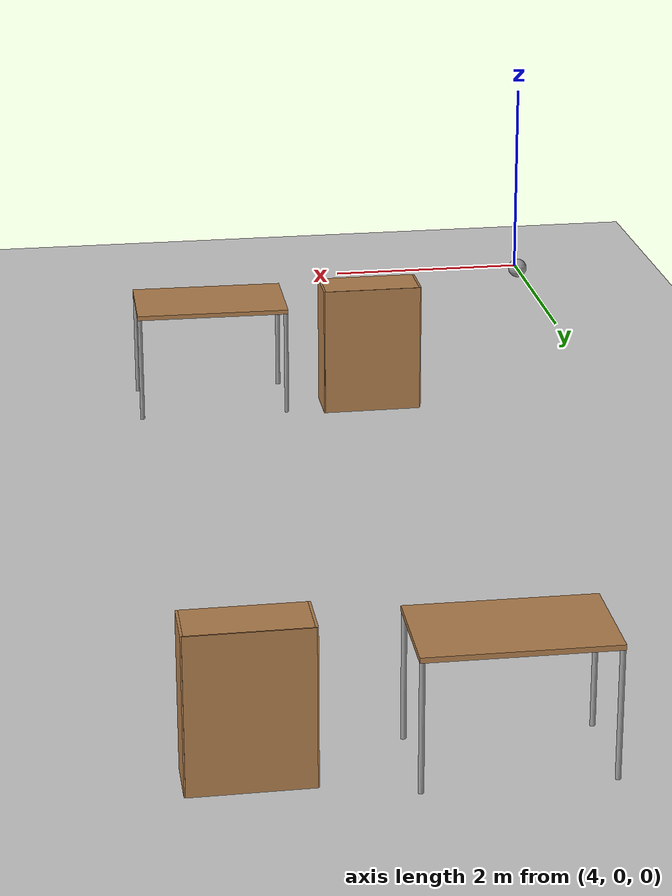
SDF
<sdf version="1.6">
 <world name="default">
  <model name="ground_plane">
   <static>1</static>
   <link name="link">
    <collision name="collision">
     <geometry><plane><normal>0 0 1</normal><size>100 100</size></plane></geometry>
     <surface><friction><ode><mu>100</mu><mu2>50</mu2></ode></friction></surface>
    </collision>
    <visual name="visual">
     <cast_shadows>0</cast_shadows>
     <geometry><plane><normal>0 0 1</normal><size>100 100</size></plane></geometry>
     <material>
      <script><uri>file://media/materials/scripts/gazebo.material</uri><name>Gazebo/Grey</name></script>
     </material>
    </visual>
   </link>
  </model>
  <model name="Untitled">
   <link name="link_0">
    <inertial>
     <mass>1</mass>
     <inertia><ixx>0.1</ixx><ixy>0</ixy><ixz>0</ixz><iyy>0.1</iyy><iyz>0</iyz><izz>0.1</izz></inertia>
    </inertial>
    <visual name="visual">
     <geometry><sphere><radius>0.1</radius></sphere></geometry>
     <material>
      <lighting>1</lighting>
      <script><uri>file://media/materials/scripts/gazebo.material</uri><name>Gazebo/Grey</name></script>
      <ambient>1 1 1 1</ambient>
      <diffuse>1 1 1 1</diffuse>
      <specular>1 1 1 1</specular>
      <emissive>1 1 1 1</emissive>
      <shader type="vertex"><normal_map>__default__</normal_map></shader>
     </material>
    </visual>
    <collision name="collision">
     <geometry><sphere><radius>0.1</radius></sphere></geometry>
     <surface>
      <friction>
       <ode><mu>1</mu><mu2>1</mu2><fdir1>0 0 0</fdir1><slip1>0</slip1><slip2>0</slip2></ode>
       <torsional>
        <coefficient>1</coefficient>
        <patch_radius>0</patch_radius>
        <surface_radius>0</surface_radius>
        <use_patch_radius>1</use_patch_radius>
        <ode><slip>0</slip></ode>
       </torsional>
      </friction>
      <bounce><restitution_coefficient>0</restitution_coefficient><threshold>1e+06</threshold></bounce>
      <contact>
       <collide_without_contact>0</collide_without_contact>
       <collide_without_contact_bitmask>1</collide_without_contact_bitmask>
       <collide_bitmask>1</collide_bitmask>
       <ode>
        <soft_cfm>0</soft_cfm>
        <soft_erp>0.2</soft_erp>
        <kp>1e+13</kp>
        <kd>1</kd>
        <max_vel>0.01</max_vel>
        <min_depth>0</min_depth>
       </ode>
       <bullet>
        <split_impulse>1</split_impulse>
        <split_impulse_penetration_threshold>-0.01</split_impulse_penetration_threshold>
        <soft_cfm>0</soft_cfm>
        <soft_erp>0.2</soft_erp>
        <kp>1e+13</kp>
        <kd>1</kd>
       </bullet>
      </contact>
     </surface>
    </collision>
   </link>
   <static>0</static>
   <pose>4.05876 0.388057 0.1 -0.002925 -7.8e-05 -2e-06</pose>
  </model>
  <model name="bookshelf">
   <static>1</static>
   <link name="link">
    <inertial><mass>1</mass></inertial>
    <collision name="back">
     <pose>0 0.005 0.6 0 -0 0</pose>
     <geometry><box><size>0.9 0.01 1.2</size></box></geometry>
    </collision>
    <visual name="visual1">
     <pose>0 0.005 0.6 0 -0 0</pose>
     <geometry><box><size>0.9 0.01 1.2</size></box></geometry>
     <material>
      <script><uri>file://media/materials/scripts/gazebo.material</uri><name>Gazebo/Wood</name></script>
     </material>
    </visual>
    <collision name="left_side">
     <pose>0.45 -0.195 0.6 0 -0 0</pose>
     <geometry><box><size>0.02 0.4 1.2</size></box></geometry>
    </collision>
    <visual name="visual2">
     <pose>0.45 -0.195 0.6 0 -0 0</pose>
     <geometry><box><size>0.02 0.4 1.2</size></box></geometry>
     <material>
      <script><uri>file://media/materials/scripts/gazebo.material</uri><name>Gazebo/Wood</name></script>
     </material>
    </visual>
    <collision name="right_side">
     <pose>-0.45 -0.195 0.6 0 -0 0</pose>
     <geometry><box><size>0.02 0.4 1.2</size></box></geometry>
    </collision>
    <visual name="visual3">
     <pose>-0.45 -0.195 0.6 0 -0 0</pose>
     <geometry><box><size>0.02 0.4 1.2</size></box></geometry>
     <material>
      <script><uri>file://media/materials/scripts/gazebo.material</uri><name>Gazebo/Wood</name></script>
     </material>
    </visual>
    <collision name="bottom">
     <pose>0 -0.195 0.03 0 -0 0</pose>
     <geometry><box><size>0.88 0.4 0.06</size></box></geometry>
    </collision>
    <visual name="visual4">
     <pose>0 -0.195 0.03 0 -0 0</pose>
     <geometry><box><size>0.88 0.4 0.06</size></box></geometry>
     <material>
      <script><uri>file://media/materials/scripts/gazebo.material</uri><name>Gazebo/Wood</name></script>
     </material>
    </visual>
    <collision name="top">
     <pose>0 -0.195 1.19 0 -0 0</pose>
     <geometry><box><size>0.88 0.4 0.02</size></box></geometry>
    </collision>
    <visual name="visual5">
     <pose>0 -0.195 1.19 0 -0 0</pose>
     <geometry><box><size>0.88 0.4 0.02</size></box></geometry>
     <material>
      <script><uri>file://media/materials/scripts/gazebo.material</uri><name>Gazebo/Wood</name></script>
     </material>
    </visual>
    <collision name="low_shelf">
     <pose>0 -0.195 0.43 0 -0 0</pose>
     <geometry><box><size>0.88 0.4 0.02</size></box></geometry>
    </collision>
    <visual name="visual6">
     <pose>0 -0.195 0.43 0 -0 0</pose>
     <geometry><box><size>0.88 0.4 0.02</size></box></geometry>
     <material>
      <script><uri>file://media/materials/scripts/gazebo.material</uri><name>Gazebo/Wood</name></script>
     </material>
    </visual>
    <collision name="high_shelf">
     <pose>0 -0.195 0.8 0 -0 0</pose>
     <geometry><box><size>0.88 0.4 0.02</size></box></geometry>
    </collision>
    <visual name="visual7">
     <pose>0 -0.195 0.8 0 -0 0</pose>
     <geometry><box><size>0.88 0.4 0.02</size></box></geometry>
     <material>
      <script><uri>file://media/materials/scripts/gazebo.material</uri><name>Gazebo/Wood</name></script>
     </material>
    </visual>
   </link>
   <pose>8.19399 11.037 0 0 -0 0</pose>
  </model>
  <model name="bookshelf_0">
   <static>1</static>
   <link name="link">
    <inertial><mass>1</mass></inertial>
    <collision name="back">
     <pose>0 0.005 0.6 0 -0 0</pose>
     <geometry><box><size>0.9 0.01 1.2</size></box></geometry>
    </collision>
    <visual name="visual1">
     <pose>0 0.005 0.6 0 -0 0</pose>
     <geometry><box><size>0.9 0.01 1.2</size></box></geometry>
     <material>
      <script><uri>file://media/materials/scripts/gazebo.material</uri><name>Gazebo/Wood</name></script>
     </material>
    </visual>
    <collision name="left_side">
     <pose>0.45 -0.195 0.6 0 -0 0</pose>
     <geometry><box><size>0.02 0.4 1.2</size></box></geometry>
    </collision>
    <visual name="visual2">
     <pose>0.45 -0.195 0.6 0 -0 0</pose>
     <geometry><box><size>0.02 0.4 1.2</size></box></geometry>
     <material>
      <script><uri>file://media/materials/scripts/gazebo.material</uri><name>Gazebo/Wood</name></script>
     </material>
    </visual>
    <collision name="right_side">
     <pose>-0.45 -0.195 0.6 0 -0 0</pose>
     <geometry><box><size>0.02 0.4 1.2</size></box></geometry>
    </collision>
    <visual name="visual3">
     <pose>-0.45 -0.195 0.6 0 -0 0</pose>
     <geometry><box><size>0.02 0.4 1.2</size></box></geometry>
     <material>
      <script><uri>file://media/materials/scripts/gazebo.material</uri><name>Gazebo/Wood</name></script>
     </material>
    </visual>
    <collision name="bottom">
     <pose>0 -0.195 0.03 0 -0 0</pose>
     <geometry><box><size>0.88 0.4 0.06</size></box></geometry>
    </collision>
    <visual name="visual4">
     <pose>0 -0.195 0.03 0 -0 0</pose>
     <geometry><box><size>0.88 0.4 0.06</size></box></geometry>
     <material>
      <script><uri>file://media/materials/scripts/gazebo.material</uri><name>Gazebo/Wood</name></script>
     </material>
    </visual>
    <collision name="top">
     <pose>0 -0.195 1.19 0 -0 0</pose>
     <geometry><box><size>0.88 0.4 0.02</size></box></geometry>
    </collision>
    <visual name="visual5">
     <pose>0 -0.195 1.19 0 -0 0</pose>
     <geometry><box><size>0.88 0.4 0.02</size></box></geometry>
     <material>
      <script><uri>file://media/materials/scripts/gazebo.material</uri><name>Gazebo/Wood</name></script>
     </material>
    </visual>
    <collision name="low_shelf">
     <pose>0 -0.195 0.43 0 -0 0</pose>
     <geometry><box><size>0.88 0.4 0.02</size></box></geometry>
    </collision>
    <visual name="visual6">
     <pose>0 -0.195 0.43 0 -0 0</pose>
     <geometry><box><size>0.88 0.4 0.02</size></box></geometry>
     <material>
      <script><uri>file://media/materials/scripts/gazebo.material</uri><name>Gazebo/Wood</name></script>
     </material>
    </visual>
    <collision name="high_shelf">
     <pose>0 -0.195 0.8 0 -0 0</pose>
     <geometry><box><size>0.88 0.4 0.02</size></box></geometry>
    </collision>
    <visual name="visual7">
     <pose>0 -0.195 0.8 0 -0 0</pose>
     <geometry><box><size>0.88 0.4 0.02</size></box></geometry>
     <material>
      <script><uri>file://media/materials/scripts/gazebo.material</uri><name>Gazebo/Wood</name></script>
     </material>
    </visual>
   </link>
   <pose>6.27313 4.14524 0 0 -0 0</pose>
  </model>
  <model name="table_0">
   <static>0</static>
   <link name="link">
    <collision name="surface">
     <pose>0 0 1 0 -0 0</pose>
     <geometry><box><size>1.5 0.8 0.03</size></box></geometry>
     <surface><friction><ode><mu>0.6</mu><mu2>0.6</mu2></ode></friction></surface>
    </collision>
    <visual name="visual1">
     <pose>0 0 1 0 -0 0</pose>
     <geometry><box><size>1.4 0.8 0.04</size></box></geometry>
     <material>
      <script><uri>file://media/materials/scripts/gazebo.material</uri><name>Gazebo/Wood</name></script>
     </material>
    </visual>
    <collision name="front_left_leg">
     <pose>0.68 0.38 0.5 0 -0 0</pose>
     <geometry><cylinder><radius>0.02</radius><length>1</length></cylinder></geometry>
    </collision>
    <visual name="front_left_leg">
     <pose>0.68 0.38 0.5 0 -0 0</pose>
     <geometry><cylinder><radius>0.02</radius><length>1</length></cylinder></geometry>
     <material>
      <script><uri>file://media/materials/scripts/gazebo.material</uri><name>Gazebo/Grey</name></script>
     </material>
    </visual>
    <collision name="front_right_leg">
     <pose>0.68 -0.38 0.5 0 -0 0</pose>
     <geometry><cylinder><radius>0.02</radius><length>1</length></cylinder></geometry>
    </collision>
    <visual name="front_right_leg">
     <pose>0.68 -0.38 0.5 0 -0 0</pose>
     <geometry><cylinder><radius>0.02</radius><length>1</length></cylinder></geometry>
     <material>
      <script><uri>file://media/materials/scripts/gazebo.material</uri><name>Gazebo/Grey</name></script>
     </material>
    </visual>
    <collision name="back_right_leg">
     <pose>-0.68 -0.38 0.5 0 -0 0</pose>
     <geometry><cylinder><radius>0.02</radius><length>1</length></cylinder></geometry>
    </collision>
    <visual name="back_right_leg">
     <pose>-0.68 -0.38 0.5 0 -0 0</pose>
     <geometry><cylinder><radius>0.02</radius><length>1</length></cylinder></geometry>
     <material>
      <script><uri>file://media/materials/scripts/gazebo.material</uri><name>Gazebo/Grey</name></script>
     </material>
    </visual>
    <collision name="back_left_leg">
     <pose>-0.68 0.38 0.5 0 -0 0</pose>
     <geometry><cylinder><radius>0.02</radius><length>1</length></cylinder></geometry>
    </collision>
    <visual name="back_left_leg">
     <pose>-0.68 0.38 0.5 0 -0 0</pose>
     <geometry><cylinder><radius>0.02</radius><length>1</length></cylinder></geometry>
     <material>
      <script><uri>file://media/materials/scripts/gazebo.material</uri><name>Gazebo/Grey</name></script>
     </material>
    </visual>
    <inertial>
     <inertia><ixx>1</ixx><ixy>0</ixy><ixz>0</ixz><iyy>1</iyy><iyz>0</iyz><izz>1</izz></inertia>
     <mass>1</mass>
    </inertial>
   </link>
   <pose>7.75399 3.67678 -6e-06 0 -5e-06 -0.012249</pose>
  </model>
  <model name="table_0_clone">
   <static>0</static>
   <link name="link">
    <collision name="surface">
     <pose>0 0 1 0 -0 0</pose>
     <geometry><box><size>1.5 0.8 0.03</size></box></geometry>
     <surface><friction><ode><mu>0.6</mu><mu2>0.6</mu2></ode></friction></surface>
    </collision>
    <visual name="visual1">
     <pose>0 0 1 0 -0 0</pose>
     <geometry><box><size>1.4 0.8 0.04</size></box></geometry>
     <material>
      <script><uri>file://media/materials/scripts/gazebo.material</uri><name>Gazebo/Wood</name></script>
     </material>
    </visual>
    <collision name="front_left_leg">
     <pose>0.68 0.38 0.5 0 -0 0</pose>
     <geometry><cylinder><radius>0.02</radius><length>1</length></cylinder></geometry>
    </collision>
    <visual name="front_left_leg">
     <pose>0.68 0.38 0.5 0 -0 0</pose>
     <geometry><cylinder><radius>0.02</radius><length>1</length></cylinder></geometry>
     <material>
      <script><uri>file://media/materials/scripts/gazebo.material</uri><name>Gazebo/Grey</name></script>
     </material>
    </visual>
    <collision name="front_right_leg">
     <pose>0.68 -0.38 0.5 0 -0 0</pose>
     <geometry><cylinder><radius>0.02</radius><length>1</length></cylinder></geometry>
    </collision>
    <visual name="front_right_leg">
     <pose>0.68 -0.38 0.5 0 -0 0</pose>
     <geometry><cylinder><radius>0.02</radius><length>1</length></cylinder></geometry>
     <material>
      <script><uri>file://media/materials/scripts/gazebo.material</uri><name>Gazebo/Grey</name></script>
     </material>
    </visual>
    <collision name="back_right_leg">
     <pose>-0.68 -0.38 0.5 0 -0 0</pose>
     <geometry><cylinder><radius>0.02</radius><length>1</length></cylinder></geometry>
    </collision>
    <visual name="back_right_leg">
     <pose>-0.68 -0.38 0.5 0 -0 0</pose>
     <geometry><cylinder><radius>0.02</radius><length>1</length></cylinder></geometry>
     <material>
      <script><uri>file://media/materials/scripts/gazebo.material</uri><name>Gazebo/Grey</name></script>
     </material>
    </visual>
    <collision name="back_left_leg">
     <pose>-0.68 0.38 0.5 0 -0 0</pose>
     <geometry><cylinder><radius>0.02</radius><length>1</length></cylinder></geometry>
    </collision>
    <visual name="back_left_leg">
     <pose>-0.68 0.38 0.5 0 -0 0</pose>
     <geometry><cylinder><radius>0.02</radius><length>1</length></cylinder></geometry>
     <material>
      <script><uri>file://media/materials/scripts/gazebo.material</uri><name>Gazebo/Grey</name></script>
     </material>
    </visual>
    <inertial>
     <inertia><ixx>1</ixx><ixy>0</ixy><ixz>0</ixz><iyy>1</iyy><iyz>0</iyz><izz>1</izz></inertia>
     <mass>1</mass>
    </inertial>
   </link>
   <pose>6.38359 10.842 -1e-06 0 1e-06 -0.012249</pose>
  </model>
 </world>
</sdf>
